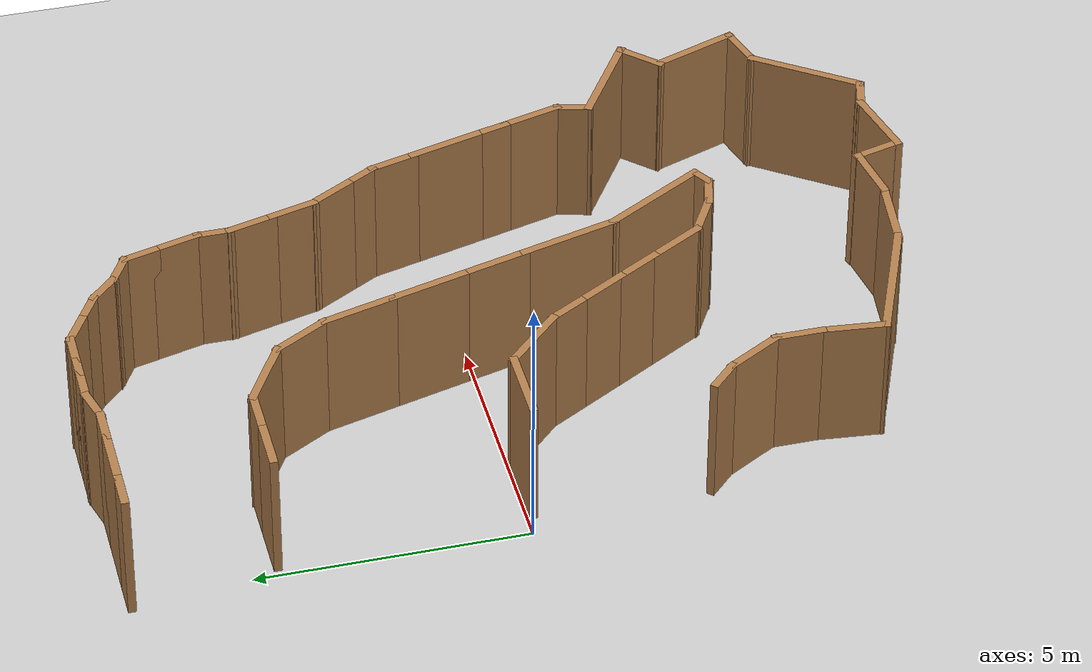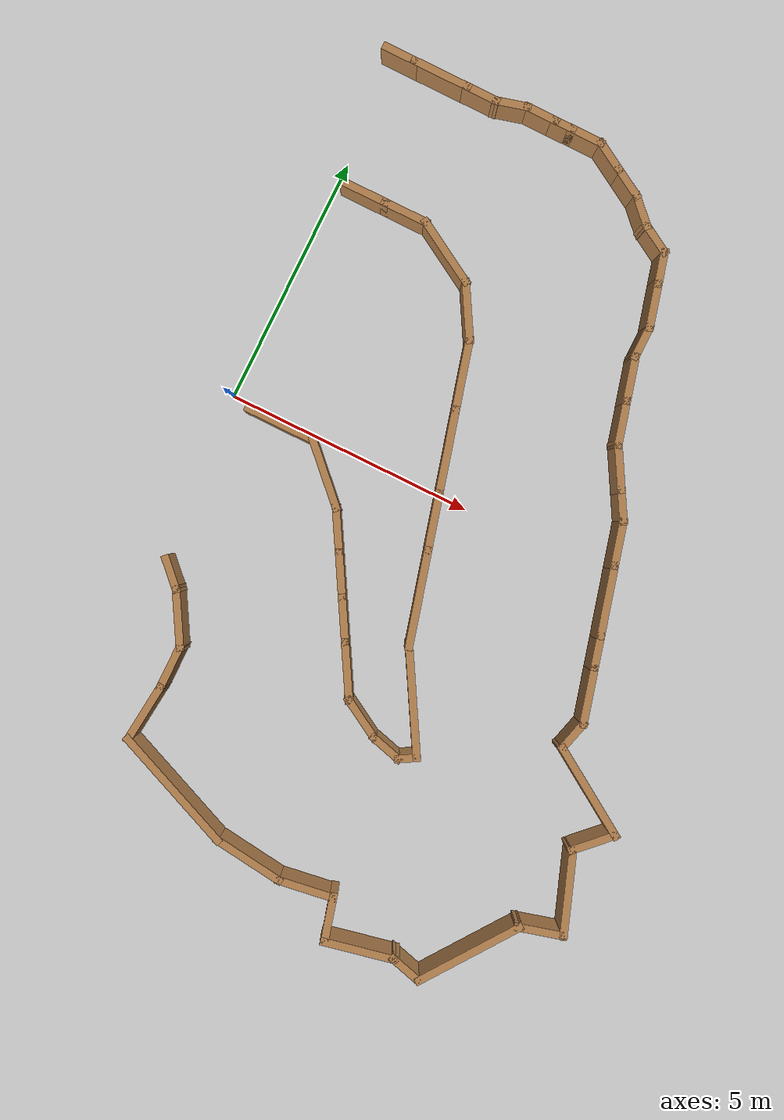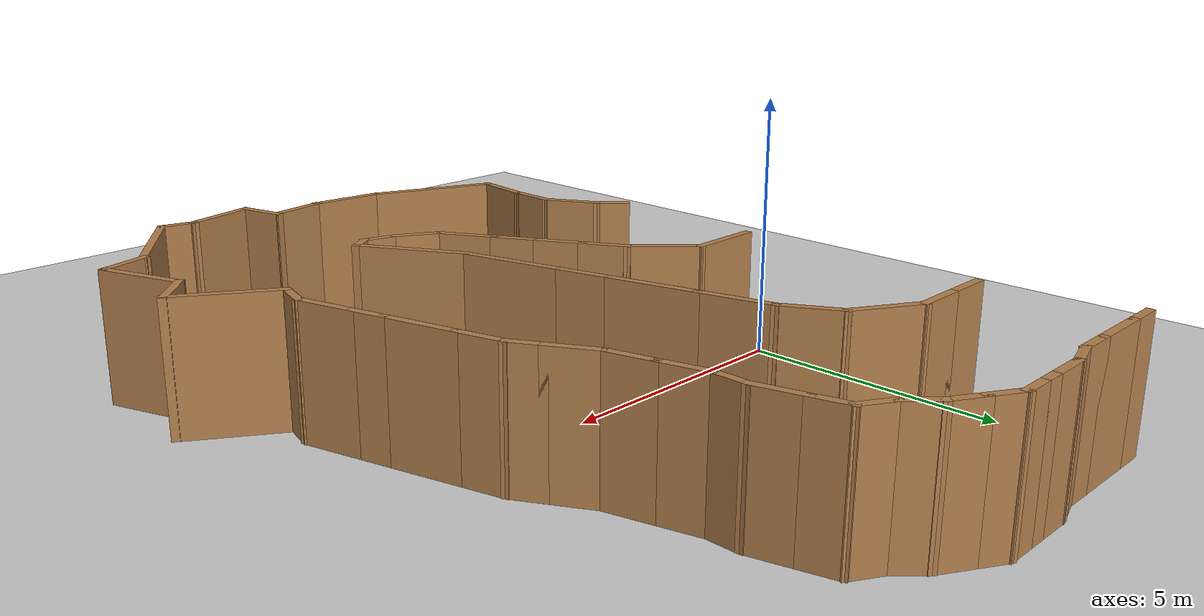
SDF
<sdf version="1.7">
 <world name="default">
  <model name="ground_plane">
   <static>1</static>
   <link name="link">
    <collision name="collision">
     <geometry><plane><normal>0 0 1</normal><size>100 100</size></plane></geometry>
     <surface><friction><ode><mu>100</mu><mu2>50</mu2></ode></friction></surface>
    </collision>
    <visual name="visual">
     <cast_shadows>0</cast_shadows>
     <geometry><plane><normal>0 0 1</normal><size>100 100</size></plane></geometry>
     <material>
      <script><uri>file://media/materials/scripts/gazebo.material</uri><name>Gazebo/Grey</name></script>
     </material>
    </visual>
   </link>
  </model>
  <model name="m-shape-circle">
   <pose>0.902463 -0.279625 0 0 -0 0</pose>
   <link name="Wall_100">
    <collision name="Wall_100_Collision">
     <geometry><box><size>1 0.15 2.5</size></box></geometry>
     <pose>0 0 1.25 0 -0 0</pose>
    </collision>
    <visual name="Wall_100_Visual">
     <pose>0 0 1.25 0 -0 0</pose>
     <geometry><box><size>1 0.15 2.5</size></box></geometry>
     <material>
      <script><uri>file://media/materials/scripts/gazebo.material</uri><name>Gazebo/Wood</name></script>
      <ambient>1 1 1 1</ambient>
     </material>
     <meta><layer>0</layer></meta>
    </visual>
    <pose>0.581193 4.79872 0 0 -0 0</pose>
   </link>
   <link name="Wall_101">
    <collision name="Wall_101_Collision">
     <geometry><box><size>1.5 0.15 2.5</size></box></geometry>
     <pose>0 0 1.25 0 -0 0</pose>
    </collision>
    <visual name="Wall_101_Visual">
     <pose>0 0 1.25 0 -0 0</pose>
     <geometry><box><size>1.5 0.15 2.5</size></box></geometry>
     <material>
      <script><uri>file://media/materials/scripts/gazebo.material</uri><name>Gazebo/Wood</name></script>
      <ambient>1 1 1 1</ambient>
     </material>
     <meta><layer>0</layer></meta>
    </visual>
    <pose>1.59076 4.46122 0 0 -0 -0.523599</pose>
   </link>
   <link name="Wall_102">
    <collision name="Wall_102_Collision">
     <geometry><box><size>1.25 0.15 2.5</size></box></geometry>
     <pose>0 0 1.25 0 -0 0</pose>
    </collision>
    <visual name="Wall_102_Visual">
     <pose>0 0 1.25 0 -0 0</pose>
     <geometry><box><size>1.25 0.15 2.5</size></box></geometry>
     <material>
      <script><uri>file://media/materials/scripts/gazebo.material</uri><name>Gazebo/Wood</name></script>
      <ambient>1 1 1 1</ambient>
     </material>
     <meta><layer>0</layer></meta>
    </visual>
    <pose>2.45033 3.6474 0 0 -0 -1.0472</pose>
   </link>
   <link name="Wall_103">
    <collision name="Wall_103_Collision">
     <geometry><box><size>1.5 0.15 2.5</size></box></geometry>
     <pose>0 0 1.25 0 -0 0</pose>
    </collision>
    <visual name="Wall_103_Visual">
     <pose>0 0 1.25 0 -0 0</pose>
     <geometry><box><size>1.5 0.15 2.5</size></box></geometry>
     <material>
      <script><uri>file://media/materials/scripts/gazebo.material</uri><name>Gazebo/Wood</name></script>
      <ambient>1 1 1 1</ambient>
     </material>
     <meta><layer>0</layer></meta>
    </visual>
    <pose>2.90003 2.51909 0 0 -0 -1.309</pose>
   </link>
   <link name="Wall_104">
    <collision name="Wall_104_Collision">
     <geometry><box><size>1.75 0.15 2.5</size></box></geometry>
     <pose>0 0 1.25 0 -0 0</pose>
    </collision>
    <visual name="Wall_104_Visual">
     <pose>0 0 1.25 0 -0 0</pose>
     <geometry><box><size>1.75 0.15 2.5</size></box></geometry>
     <material>
      <script><uri>file://media/materials/scripts/gazebo.material</uri><name>Gazebo/Wood</name></script>
      <ambient>1 1 1 1</ambient>
     </material>
     <meta><layer>0</layer></meta>
    </visual>
    <pose>3.28179 1.09435 0 0 -0 -1.309</pose>
   </link>
   <link name="Wall_105">
    <collision name="Wall_105_Collision">
     <geometry><box><size>1.25 0.15 2.5</size></box></geometry>
     <pose>0 0 1.25 0 -0 0</pose>
    </collision>
    <visual name="Wall_105_Visual">
     <pose>0 0 1.25 0 -0 0</pose>
     <geometry><box><size>1.25 0.15 2.5</size></box></geometry>
     <material>
      <script><uri>file://media/materials/scripts/gazebo.material</uri><name>Gazebo/Wood</name></script>
      <ambient>1 1 1 1</ambient>
     </material>
     <meta><layer>0</layer></meta>
    </visual>
    <pose>3.63119 -0.209651 0 0 -0 -1.309</pose>
   </link>
   <link name="Wall_106">
    <collision name="Wall_106_Collision">
     <geometry><box><size>2 0.15 2.5</size></box></geometry>
     <pose>0 0 1.25 0 -0 0</pose>
    </collision>
    <visual name="Wall_106_Visual">
     <pose>0 0 1.25 0 -0 0</pose>
     <geometry><box><size>2 0.15 2.5</size></box></geometry>
     <material>
      <script><uri>file://media/materials/scripts/gazebo.material</uri><name>Gazebo/Wood</name></script>
      <ambient>1 1 1 1</ambient>
     </material>
     <meta><layer>0</layer></meta>
    </visual>
    <pose>4.01295 -1.63439 0 0 -0 -1.309</pose>
   </link>
   <link name="Wall_107">
    <collision name="Wall_107_Collision">
     <geometry><box><size>2.25 0.15 2.5</size></box></geometry>
     <pose>0 0 1.25 0 -0 0</pose>
    </collision>
    <visual name="Wall_107_Visual">
     <pose>0 0 1.25 0 -0 0</pose>
     <geometry><box><size>2.25 0.15 2.5</size></box></geometry>
     <material>
      <script><uri>file://media/materials/scripts/gazebo.material</uri><name>Gazebo/Wood</name></script>
      <ambient>1 1 1 1</ambient>
     </material>
     <meta><layer>0</layer></meta>
    </visual>
    <pose>4.77736 -3.4372 0 0 -0 -1.0472</pose>
   </link>
   <link name="Wall_108">
    <collision name="Wall_108_Collision">
     <geometry><box><size>0.5 0.15 2.5</size></box></geometry>
     <pose>0 0 1.25 0 -0 0</pose>
    </collision>
    <visual name="Wall_108_Visual">
     <pose>0 0 1.25 0 -0 0</pose>
     <geometry><box><size>0.5 0.15 2.5</size></box></geometry>
     <material>
      <script><uri>file://media/materials/scripts/gazebo.material</uri><name>Gazebo/Wood</name></script>
      <ambient>1 1 1 1</ambient>
     </material>
     <meta><layer>0</layer></meta>
    </visual>
    <pose>5.15081 -4.43403 0 0 -0 -2.61799</pose>
   </link>
   <link name="Wall_109">
    <collision name="Wall_109_Collision">
     <geometry><box><size>0.75 0.15 2.5</size></box></geometry>
     <pose>0 0 1.25 0 -0 0</pose>
    </collision>
    <visual name="Wall_109_Visual">
     <pose>0 0 1.25 0 -0 0</pose>
     <geometry><box><size>0.75 0.15 2.5</size></box></geometry>
     <material>
      <script><uri>file://media/materials/scripts/gazebo.material</uri><name>Gazebo/Wood</name></script>
      <ambient>1 1 1 1</ambient>
     </material>
     <meta><layer>0</layer></meta>
    </visual>
    <pose>4.70947 -4.44388 0 0 -0 2.87979</pose>
   </link>
   <link name="Wall_110">
    <collision name="Wall_110_Collision">
     <geometry><box><size>1 0.15 2.5</size></box></geometry>
     <pose>0 0 1.25 0 -0 0</pose>
    </collision>
    <visual name="Wall_110_Visual">
     <pose>0 0 1.25 0 -0 0</pose>
     <geometry><box><size>1 0.15 2.5</size></box></geometry>
     <material>
      <script><uri>file://media/materials/scripts/gazebo.material</uri><name>Gazebo/Wood</name></script>
      <ambient>1 1 1 1</ambient>
     </material>
     <meta><layer>0</layer></meta>
    </visual>
    <pose>4.05163 -4.15374 0 0 -0 2.61799</pose>
   </link>
   <link name="Wall_111">
    <collision name="Wall_111_Collision">
     <geometry><box><size>1.25 0.15 2.5</size></box></geometry>
     <pose>0 0 1.25 0 -0 0</pose>
    </collision>
    <visual name="Wall_111_Visual">
     <pose>0 0 1.25 0 -0 0</pose>
     <geometry><box><size>1.25 0.15 2.5</size></box></geometry>
     <material>
      <script><uri>file://media/materials/scripts/gazebo.material</uri><name>Gazebo/Wood</name></script>
      <ambient>1 1 1 1</ambient>
     </material>
     <meta><layer>0</layer></meta>
    </visual>
    <pose>3.40857 -3.46492 0 0 -0 2.0944</pose>
   </link>
   <link name="Wall_112">
    <collision name="Wall_112_Collision">
     <geometry><box><size>1 0.15 2.5</size></box></geometry>
     <pose>0 0 1.25 0 -0 0</pose>
    </collision>
    <visual name="Wall_112_Visual">
     <pose>0 0 1.25 0 -0 0</pose>
     <geometry><box><size>1 0.15 2.5</size></box></geometry>
     <material>
      <script><uri>file://media/materials/scripts/gazebo.material</uri><name>Gazebo/Wood</name></script>
      <ambient>1 1 1 1</ambient>
     </material>
     <meta><layer>0</layer></meta>
    </visual>
    <pose>2.92107 -2.62055 0 0 -0 2.0944</pose>
   </link>
   <link name="Wall_113">
    <collision name="Wall_113_Collision">
     <geometry><box><size>1 0.15 2.5</size></box></geometry>
     <pose>0 0 1.25 0 -0 0</pose>
    </collision>
    <visual name="Wall_113_Visual">
     <pose>0 0 1.25 0 -0 0</pose>
     <geometry><box><size>1 0.15 2.5</size></box></geometry>
     <material>
      <script><uri>file://media/materials/scripts/gazebo.material</uri><name>Gazebo/Wood</name></script>
      <ambient>1 1 1 1</ambient>
     </material>
     <meta><layer>0</layer></meta>
    </visual>
    <pose>2.49607 -1.88443 0 0 -0 2.0944</pose>
   </link>
   <link name="Wall_114">
    <collision name="Wall_114_Collision">
     <geometry><box><size>1 0.15 2.5</size></box></geometry>
     <pose>0 0 1.25 0 -0 0</pose>
    </collision>
    <visual name="Wall_114_Visual">
     <pose>0 0 1.25 0 -0 0</pose>
     <geometry><box><size>1 0.15 2.5</size></box></geometry>
     <material>
      <script><uri>file://media/materials/scripts/gazebo.material</uri><name>Gazebo/Wood</name></script>
      <ambient>1 1 1 1</ambient>
     </material>
     <meta><layer>0</layer></meta>
    </visual>
    <pose>2.07107 -1.1483 0 0 -0 2.0944</pose>
   </link>
   <link name="Wall_115">
    <collision name="Wall_115_Collision">
     <geometry><box><size>1.5 0.15 2.5</size></box></geometry>
     <pose>0 0 1.25 0 -0 0</pose>
    </collision>
    <visual name="Wall_115_Visual">
     <pose>0 0 1.25 0 -0 0</pose>
     <geometry><box><size>1.5 0.15 2.5</size></box></geometry>
     <material>
      <script><uri>file://media/materials/scripts/gazebo.material</uri><name>Gazebo/Wood</name></script>
      <ambient>1 1 1 1</ambient>
     </material>
     <meta><layer>0</layer></meta>
    </visual>
    <pose>1.38128 -0.302945 0 0 -0 2.35619</pose>
   </link>
   <link name="Wall_116">
    <collision name="Wall_116_Collision">
     <geometry><box><size>1.5 0.15 2.5</size></box></geometry>
     <pose>0 0 1.25 0 -0 0</pose>
    </collision>
    <visual name="Wall_116_Visual">
     <pose>0 0 1.25 0 -0 0</pose>
     <geometry><box><size>1.5 0.15 2.5</size></box></geometry>
     <material>
      <script><uri>file://media/materials/scripts/gazebo.material</uri><name>Gazebo/Wood</name></script>
      <ambient>1 1 1 1</ambient>
     </material>
     <meta><layer>0</layer></meta>
    </visual>
    <pose>0.228979 0.174352 0 0 -0 3.14159</pose>
   </link>
   <link name="Wall_29">
    <collision name="Wall_29_Collision">
     <geometry><box><size>0.75 0.15 2.5</size></box></geometry>
     <pose>0 0 1.25 0 -0 0</pose>
    </collision>
    <visual name="Wall_29_Visual">
     <pose>0 0 1.25 0 -0 0</pose>
     <geometry><box><size>0.75 0.15 2.5</size></box></geometry>
     <material>
      <script><uri>file://media/materials/scripts/gazebo.material</uri><name>Gazebo/Wood</name></script>
      <ambient>1 1 1 1</ambient>
     </material>
     <meta><layer>0</layer></meta>
    </visual>
    <pose>-0.81552 7.44152 0 0 -0 0</pose>
   </link>
   <link name="Wall_30">
    <collision name="Wall_30_Collision">
     <geometry><box><size>1.25 0.15 2.5</size></box></geometry>
     <pose>0 0 1.25 0 -0 0</pose>
    </collision>
    <visual name="Wall_30_Visual">
     <pose>0 0 1.25 0 -0 0</pose>
     <geometry><box><size>1.25 0.15 2.5</size></box></geometry>
     <material>
      <script><uri>file://media/materials/scripts/gazebo.material</uri><name>Gazebo/Wood</name></script>
      <ambient>1 1 1 1</ambient>
     </material>
     <meta><layer>0</layer></meta>
    </visual>
    <pose>0.03448 7.44152 0 0 -0 0</pose>
   </link>
   <link name="Wall_31">
    <collision name="Wall_31_Collision">
     <geometry><box><size>0.75 0.15 2.5</size></box></geometry>
     <pose>0 0 1.25 0 -0 0</pose>
    </collision>
    <visual name="Wall_31_Visual">
     <pose>0 0 1.25 0 -0 0</pose>
     <geometry><box><size>0.75 0.15 2.5</size></box></geometry>
     <material>
      <script><uri>file://media/materials/scripts/gazebo.material</uri><name>Gazebo/Wood</name></script>
      <ambient>1 1 1 1</ambient>
     </material>
     <meta><layer>0</layer></meta>
    </visual>
    <pose>0.88448 7.44152 0 0 -0 0</pose>
   </link>
   <link name="Wall_32">
    <collision name="Wall_32_Collision">
     <geometry><box><size>0.75 0.15 2.5</size></box></geometry>
     <pose>0 0 1.25 0 -0 0</pose>
    </collision>
    <visual name="Wall_32_Visual">
     <pose>0 0 1.25 0 -0 0</pose>
     <geometry><box><size>0.75 0.15 2.5</size></box></geometry>
     <material>
      <script><uri>file://media/materials/scripts/gazebo.material</uri><name>Gazebo/Wood</name></script>
      <ambient>1 1 1 1</ambient>
     </material>
     <meta><layer>0</layer></meta>
    </visual>
    <pose>1.47426 7.51916 0 0 -0 0.261799</pose>
   </link>
   <link name="Wall_33">
    <collision name="Wall_33_Collision">
     <geometry><box><size>0.75 0.15 2.5</size></box></geometry>
     <pose>0 0 1.25 0 -0 0</pose>
    </collision>
    <visual name="Wall_33_Visual">
     <pose>0 0 1.25 0 -0 0</pose>
     <geometry><box><size>0.75 0.15 2.5</size></box></geometry>
     <material>
      <script><uri>file://media/materials/scripts/gazebo.material</uri><name>Gazebo/Wood</name></script>
      <ambient>1 1 1 1</ambient>
     </material>
     <meta><layer>0</layer></meta>
    </visual>
    <pose>2.06404 7.59681 0 0 -0 0</pose>
   </link>
   <link name="Wall_34">
    <collision name="Wall_34_Collision">
     <geometry><box><size>0.5 0.15 2.5</size></box></geometry>
     <pose>0 0 1.25 0 -0 0</pose>
    </collision>
    <visual name="Wall_34_Visual">
     <pose>0 0 1.25 0 -0 0</pose>
     <geometry><box><size>0.5 0.15 2.5</size></box></geometry>
     <material>
      <script><uri>file://media/materials/scripts/gazebo.material</uri><name>Gazebo/Wood</name></script>
      <ambient>1 1 1 1</ambient>
     </material>
     <meta><layer>0</layer></meta>
    </visual>
    <pose>2.53904 7.59681 0 0 -0 0</pose>
   </link>
   <link name="Wall_35">
    <collision name="Wall_35_Collision">
     <geometry><box><size>0.75 0.15 2.5</size></box></geometry>
     <pose>0 0 1.25 0 -0 0</pose>
    </collision>
    <visual name="Wall_35_Visual">
     <pose>0 0 1.25 0 -0 0</pose>
     <geometry><box><size>0.75 0.15 2.5</size></box></geometry>
     <material>
      <script><uri>file://media/materials/scripts/gazebo.material</uri><name>Gazebo/Wood</name></script>
      <ambient>1 1 1 1</ambient>
     </material>
     <meta><layer>0</layer></meta>
    </visual>
    <pose>3.01403 7.59681 0 0 -0 0</pose>
   </link>
   <link name="Wall_36">
    <collision name="Wall_36_Collision">
     <geometry><box><size>0.75 0.15 2.5</size></box></geometry>
     <pose>0 0 1.25 0 -0 0</pose>
    </collision>
    <visual name="Wall_36_Visual">
     <pose>0 0 1.25 0 -0 0</pose>
     <geometry><box><size>0.75 0.15 2.5</size></box></geometry>
     <material>
      <script><uri>file://media/materials/scripts/gazebo.material</uri><name>Gazebo/Wood</name></script>
      <ambient>1 1 1 1</ambient>
     </material>
     <meta><layer>0</layer></meta>
    </visual>
    <pose>3.57384 7.44681 0 0 -0 -0.523599</pose>
   </link>
   <link name="Wall_37">
    <collision name="Wall_37_Collision">
     <geometry><box><size>0.75 0.15 2.5</size></box></geometry>
     <pose>0 0 1.25 0 -0 0</pose>
    </collision>
    <visual name="Wall_37_Visual">
     <pose>0 0 1.25 0 -0 0</pose>
     <geometry><box><size>0.75 0.15 2.5</size></box></geometry>
     <material>
      <script><uri>file://media/materials/scripts/gazebo.material</uri><name>Gazebo/Wood</name></script>
      <ambient>1 1 1 1</ambient>
     </material>
     <meta><layer>0</layer></meta>
    </visual>
    <pose>4.09346 7.14681 0 0 -0 -0.523599</pose>
   </link>
   <link name="Wall_38">
    <collision name="Wall_38_Collision">
     <geometry><box><size>0.75 0.15 2.5</size></box></geometry>
     <pose>0 0 1.25 0 -0 0</pose>
    </collision>
    <visual name="Wall_38_Visual">
     <pose>0 0 1.25 0 -0 0</pose>
     <geometry><box><size>0.75 0.15 2.5</size></box></geometry>
     <material>
      <script><uri>file://media/materials/scripts/gazebo.material</uri><name>Gazebo/Wood</name></script>
      <ambient>1 1 1 1</ambient>
     </material>
     <meta><layer>0</layer></meta>
    </visual>
    <pose>4.5654 6.78468 0 0 -0 -0.785398</pose>
   </link>
   <link name="Wall_39">
    <collision name="Wall_39_Collision">
     <geometry><box><size>0.75 0.15 2.5</size></box></geometry>
     <pose>0 0 1.25 0 -0 0</pose>
    </collision>
    <visual name="Wall_39_Visual">
     <pose>0 0 1.25 0 -0 0</pose>
     <geometry><box><size>0.75 0.15 2.5</size></box></geometry>
     <material>
      <script><uri>file://media/materials/scripts/gazebo.material</uri><name>Gazebo/Wood</name></script>
      <ambient>1 1 1 1</ambient>
     </material>
     <meta><layer>0</layer></meta>
    </visual>
    <pose>5.03734 6.42255 0 0 -0 -0.523599</pose>
   </link>
   <link name="Wall_40">
    <collision name="Wall_40_Collision">
     <geometry><box><size>0.75 0.15 2.5</size></box></geometry>
     <pose>0 0 1.25 0 -0 0</pose>
    </collision>
    <visual name="Wall_40_Visual">
     <pose>0 0 1.25 0 -0 0</pose>
     <geometry><box><size>0.75 0.15 2.5</size></box></geometry>
     <material>
      <script><uri>file://media/materials/scripts/gazebo.material</uri><name>Gazebo/Wood</name></script>
      <ambient>1 1 1 1</ambient>
     </material>
     <meta><layer>0</layer></meta>
    </visual>
    <pose>5.37479 5.98277 0 0 -0 -1.309</pose>
   </link>
   <link name="Wall_41">
    <collision name="Wall_41_Collision">
     <geometry><box><size>1 0.15 2.5</size></box></geometry>
     <pose>0 0 1.25 0 -0 0</pose>
    </collision>
    <visual name="Wall_41_Visual">
     <pose>0 0 1.25 0 -0 0</pose>
     <geometry><box><size>1 0.15 2.5</size></box></geometry>
     <material>
      <script><uri>file://media/materials/scripts/gazebo.material</uri><name>Gazebo/Wood</name></script>
      <ambient>1 1 1 1</ambient>
     </material>
     <meta><layer>0</layer></meta>
    </visual>
    <pose>5.56243 5.28247 0 0 -0 -1.309</pose>
   </link>
   <link name="Wall_42">
    <collision name="Wall_42_Collision">
     <geometry><box><size>0.75 0.15 2.5</size></box></geometry>
     <pose>0 0 1.25 0 -0 0</pose>
    </collision>
    <visual name="Wall_42_Visual">
     <pose>0 0 1.25 0 -0 0</pose>
     <geometry><box><size>0.75 0.15 2.5</size></box></geometry>
     <material>
      <script><uri>file://media/materials/scripts/gazebo.material</uri><name>Gazebo/Wood</name></script>
      <ambient>1 1 1 1</ambient>
     </material>
     <meta><layer>0</layer></meta>
    </visual>
    <pose>5.67243 4.57195 0 0 -0 -1.5708</pose>
   </link>
   <link name="Wall_43">
    <collision name="Wall_43_Collision">
     <geometry><box><size>1 0.15 2.5</size></box></geometry>
     <pose>0 0 1.25 0 -0 0</pose>
    </collision>
    <visual name="Wall_43_Visual">
     <pose>0 0 1.25 0 -0 0</pose>
     <geometry><box><size>1 0.15 2.5</size></box></geometry>
     <material>
      <script><uri>file://media/materials/scripts/gazebo.material</uri><name>Gazebo/Wood</name></script>
      <ambient>1 1 1 1</ambient>
     </material>
     <meta><layer>0</layer></meta>
    </visual>
    <pose>5.78243 3.86144 0 0 -0 -1.309</pose>
   </link>
   <link name="Wall_44">
    <collision name="Wall_44_Collision">
     <geometry><box><size>1 0.15 2.5</size></box></geometry>
     <pose>0 0 1.25 0 -0 0</pose>
    </collision>
    <visual name="Wall_44_Visual">
     <pose>0 0 1.25 0 -0 0</pose>
     <geometry><box><size>1 0.15 2.5</size></box></geometry>
     <material>
      <script><uri>file://media/materials/scripts/gazebo.material</uri><name>Gazebo/Wood</name></script>
      <ambient>1 1 1 1</ambient>
     </material>
     <meta><layer>0</layer></meta>
    </visual>
    <pose>6.00243 3.0404 0 0 -0 -1.309</pose>
   </link>
   <link name="Wall_45">
    <collision name="Wall_45_Collision">
     <geometry><box><size>1 0.15 2.5</size></box></geometry>
     <pose>0 0 1.25 0 -0 0</pose>
    </collision>
    <visual name="Wall_45_Visual">
     <pose>0 0 1.25 0 -0 0</pose>
     <geometry><box><size>1 0.15 2.5</size></box></geometry>
     <material>
      <script><uri>file://media/materials/scripts/gazebo.material</uri><name>Gazebo/Wood</name></script>
      <ambient>1 1 1 1</ambient>
     </material>
     <meta><layer>0</layer></meta>
    </visual>
    <pose>6.32493 2.26182 0 0 -0 -1.0472</pose>
   </link>
   <link name="Wall_46">
    <collision name="Wall_46_Collision">
     <geometry><box><size>0.75 0.15 2.5</size></box></geometry>
     <pose>0 0 1.25 0 -0 0</pose>
    </collision>
    <visual name="Wall_46_Visual">
     <pose>0 0 1.25 0 -0 0</pose>
     <geometry><box><size>0.75 0.15 2.5</size></box></geometry>
     <material>
      <script><uri>file://media/materials/scripts/gazebo.material</uri><name>Gazebo/Wood</name></script>
      <ambient>1 1 1 1</ambient>
     </material>
     <meta><layer>0</layer></meta>
    </visual>
    <pose>6.68743 1.63395 0 0 -0 -1.0472</pose>
   </link>
   <link name="Wall_47">
    <collision name="Wall_47_Collision">
     <geometry><box><size>1 0.15 2.5</size></box></geometry>
     <pose>0 0 1.25 0 -0 0</pose>
    </collision>
    <visual name="Wall_47_Visual">
     <pose>0 0 1.25 0 -0 0</pose>
     <geometry><box><size>1 0.15 2.5</size></box></geometry>
     <material>
      <script><uri>file://media/materials/scripts/gazebo.material</uri><name>Gazebo/Wood</name></script>
      <ambient>1 1 1 1</ambient>
     </material>
     <meta><layer>0</layer></meta>
    </visual>
    <pose>6.94742 0.963624 0 0 -0 -1.309</pose>
   </link>
   <link name="Wall_48">
    <collision name="Wall_48_Collision">
     <geometry><box><size>1.5 0.15 2.5</size></box></geometry>
     <pose>0 0 1.25 0 -0 0</pose>
    </collision>
    <visual name="Wall_48_Visual">
     <pose>0 0 1.25 0 -0 0</pose>
     <geometry><box><size>1.5 0.15 2.5</size></box></geometry>
     <material>
      <script><uri>file://media/materials/scripts/gazebo.material</uri><name>Gazebo/Wood</name></script>
      <ambient>1 1 1 1</ambient>
     </material>
     <meta><layer>0</layer></meta>
    </visual>
    <pose>7.23212 -0.098895 0 0 -0 -1.309</pose>
   </link>
   <link name="Wall_49">
    <collision name="Wall_49_Collision">
     <geometry><box><size>0.75 0.15 2.5</size></box></geometry>
     <pose>0 0 1.25 0 -0 0</pose>
    </collision>
    <visual name="Wall_49_Visual">
     <pose>0 0 1.25 0 -0 0</pose>
     <geometry><box><size>0.75 0.15 2.5</size></box></geometry>
     <material>
      <script><uri>file://media/materials/scripts/gazebo.material</uri><name>Gazebo/Wood</name></script>
      <ambient>1 1 1 1</ambient>
     </material>
     <meta><layer>0</layer></meta>
    </visual>
    <pose>7.48447 -1.04067 0 0 -0 -1.309</pose>
   </link>
   <link name="Wall_50">
    <collision name="Wall_50_Collision">
     <geometry><box><size>1.25 0.15 2.5</size></box></geometry>
     <pose>0 0 1.25 0 -0 0</pose>
    </collision>
    <visual name="Wall_50_Visual">
     <pose>0 0 1.25 0 -0 0</pose>
     <geometry><box><size>1.25 0.15 2.5</size></box></geometry>
     <material>
      <script><uri>file://media/materials/scripts/gazebo.material</uri><name>Gazebo/Wood</name></script>
      <ambient>1 1 1 1</ambient>
     </material>
     <meta><layer>0</layer></meta>
    </visual>
    <pose>7.70447 -1.86171 0 0 -0 -1.309</pose>
   </link>
   <link name="Wall_51">
    <collision name="Wall_51_Collision">
     <geometry><box><size>0.75 0.15 2.5</size></box></geometry>
     <pose>0 0 1.25 0 -0 0</pose>
    </collision>
    <visual name="Wall_51_Visual">
     <pose>0 0 1.25 0 -0 0</pose>
     <geometry><box><size>0.75 0.15 2.5</size></box></geometry>
     <material>
      <script><uri>file://media/materials/scripts/gazebo.material</uri><name>Gazebo/Wood</name></script>
      <ambient>1 1 1 1</ambient>
     </material>
     <meta><layer>0</layer></meta>
    </visual>
    <pose>7.76917 -2.68275 0 0 -0 -1.8326</pose>
   </link>
   <link name="Wall_52">
    <collision name="Wall_52_Collision">
     <geometry><box><size>2.09057 0.15 2.5</size></box></geometry>
     <pose>0 0 1.25 0 -0 0</pose>
    </collision>
    <visual name="Wall_52_Visual">
     <pose>0 0 1.25 0 -0 0</pose>
     <geometry><box><size>2.09057 0.15 2.5</size></box></geometry>
     <material>
      <script><uri>file://media/materials/scripts/gazebo.material</uri><name>Gazebo/Wood</name></script>
      <ambient>1 1 1 1</ambient>
     </material>
     <meta><layer>0</layer></meta>
    </visual>
    <pose>8.50675 -3.4987 0 0 -0 -0.573156</pose>
   </link>
   <link name="Wall_53">
    <collision name="Wall_53_Collision">
     <geometry><box><size>1 0.15 2.5</size></box></geometry>
     <pose>0 0 1.25 0 -0 0</pose>
    </collision>
    <visual name="Wall_53_Visual">
     <pose>0 0 1.25 0 -0 0</pose>
     <geometry><box><size>1 0.15 2.5</size></box></geometry>
     <material>
      <script><uri>file://media/materials/scripts/gazebo.material</uri><name>Gazebo/Wood</name></script>
      <ambient>1 1 1 1</ambient>
     </material>
     <meta><layer>0</layer></meta>
    </visual>
    <pose>8.99833 -4.32539 0 0 -0 -2.35619</pose>
   </link>
   <link name="Wall_54">
    <collision name="Wall_54_Collision">
     <geometry><box><size>1.77338 0.15 2.5</size></box></geometry>
     <pose>0 0 1.25 0 -0 0</pose>
    </collision>
    <visual name="Wall_54_Visual">
     <pose>0 0 1.25 0 -0 0</pose>
     <geometry><box><size>1.77338 0.15 2.5</size></box></geometry>
     <material>
      <script><uri>file://media/materials/scripts/gazebo.material</uri><name>Gazebo/Wood</name></script>
      <ambient>1 1 1 1</ambient>
     </material>
     <meta><layer>0</layer></meta>
    </visual>
    <pose>8.99699 -5.38922 0 0 -0 -1.22379</pose>
   </link>
   <link name="Wall_55">
    <collision name="Wall_55_Collision">
     <geometry><box><size>1 0.15 2.5</size></box></geometry>
     <pose>0 0 1.25 0 -0 0</pose>
    </collision>
    <visual name="Wall_55_Visual">
     <pose>0 0 1.25 0 -0 0</pose>
     <geometry><box><size>1 0.15 2.5</size></box></geometry>
     <material>
      <script><uri>file://media/materials/scripts/gazebo.material</uri><name>Gazebo/Wood</name></script>
      <ambient>1 1 1 1</ambient>
     </material>
     <meta><layer>0</layer></meta>
    </visual>
    <pose>8.83939 -6.26253 0 0 -0 -2.87979</pose>
   </link>
   <link name="Wall_56">
    <collision name="Wall_56_Collision">
     <geometry><box><size>2.28951 0.15 2.5</size></box></geometry>
     <pose>0 0 1.25 0 -0 0</pose>
    </collision>
    <visual name="Wall_56_Visual">
     <pose>0 0 1.25 0 -0 0</pose>
     <geometry><box><size>2.28951 0.15 2.5</size></box></geometry>
     <material>
      <script><uri>file://media/materials/scripts/gazebo.material</uri><name>Gazebo/Wood</name></script>
      <ambient>1 1 1 1</ambient>
     </material>
     <meta><layer>0</layer></meta>
    </visual>
    <pose>7.82269 -7.23759 0 0 -0 -2.19972</pose>
   </link>
   <link name="Wall_57">
    <collision name="Wall_57_Collision">
     <geometry><box><size>0.75 0.15 2.5</size></box></geometry>
     <pose>0 0 1.25 0 -0 0</pose>
    </collision>
    <visual name="Wall_57_Visual">
     <pose>0 0 1.25 0 -0 0</pose>
     <geometry><box><size>0.75 0.15 2.5</size></box></geometry>
     <material>
      <script><uri>file://media/materials/scripts/gazebo.material</uri><name>Gazebo/Wood</name></script>
      <ambient>1 1 1 1</ambient>
     </material>
     <meta><layer>0</layer></meta>
    </visual>
    <pose>6.87302 -8.02502 0 0 -0 2.87979</pose>
   </link>
   <link name="Wall_58">
    <collision name="Wall_58_Collision">
     <geometry><box><size>1.52652 0.15 2.5</size></box></geometry>
     <pose>0 0 1.25 0 -0 0</pose>
    </collision>
    <visual name="Wall_58_Visual">
     <pose>0 0 1.25 0 -0 0</pose>
     <geometry><box><size>1.52652 0.15 2.5</size></box></geometry>
     <material>
      <script><uri>file://media/materials/scripts/gazebo.material</uri><name>Gazebo/Wood</name></script>
      <ambient>1 1 1 1</ambient>
     </material>
     <meta><layer>0</layer></meta>
    </visual>
    <pose>5.94063 -8.09059 0 0 -0 -2.93198</pose>
   </link>
   <link name="Wall_59">
    <collision name="Wall_59_Collision">
     <geometry><box><size>1 0.15 2.5</size></box></geometry>
     <pose>0 0 1.25 0 -0 0</pose>
    </collision>
    <visual name="Wall_59_Visual">
     <pose>0 0 1.25 0 -0 0</pose>
     <geometry><box><size>1 0.15 2.5</size></box></geometry>
     <material>
      <script><uri>file://media/materials/scripts/gazebo.material</uri><name>Gazebo/Wood</name></script>
      <ambient>1 1 1 1</ambient>
     </material>
     <meta><layer>0</layer></meta>
    </visual>
    <pose>5.15744 -7.80016 0 0 -0 1.8326</pose>
   </link>
   <link name="Wall_60">
    <collision name="Wall_60_Collision">
     <geometry><box><size>1.22345 0.15 2.5</size></box></geometry>
     <pose>0 0 1.25 0 -0 0</pose>
    </collision>
    <visual name="Wall_60_Visual">
     <pose>0 0 1.25 0 -0 0</pose>
     <geometry><box><size>1.22345 0.15 2.5</size></box></geometry>
     <material>
      <script><uri>file://media/materials/scripts/gazebo.material</uri><name>Gazebo/Wood</name></script>
      <ambient>1 1 1 1</ambient>
     </material>
     <meta><layer>0</layer></meta>
    </visual>
    <pose>4.51648 -7.4912 0 0 -0 -2.99494</pose>
   </link>
   <link name="Wall_63">
    <collision name="Wall_63_Collision">
     <geometry><box><size>2.69847 0.15 2.5</size></box></geometry>
     <pose>0 0 1.25 0 -0 0</pose>
    </collision>
    <visual name="Wall_63_Visual">
     <pose>0 0 1.25 0 -0 0</pose>
     <geometry><box><size>2.69847 0.15 2.5</size></box></geometry>
     <material>
      <script><uri>file://media/materials/scripts/gazebo.material</uri><name>Gazebo/Wood</name></script>
      <ambient>1 1 1 1</ambient>
     </material>
     <meta><layer>0</layer></meta>
    </visual>
    <pose>1.43951 -6.91603 0 0 -0 2.7519</pose>
   </link>
   <link name="Wall_87">
    <collision name="Wall_87_Collision">
     <geometry><box><size>0.75 0.15 2.5</size></box></geometry>
     <pose>0 0 1.25 0 -0 0</pose>
    </collision>
    <visual name="Wall_87_Visual">
     <pose>0 0 1.25 0 -0 0</pose>
     <geometry><box><size>0.75 0.15 2.5</size></box></geometry>
     <material>
      <script><uri>file://media/materials/scripts/gazebo.material</uri><name>Gazebo/Wood</name></script>
      <ambient>1 1 1 1</ambient>
     </material>
     <meta><layer>0</layer></meta>
    </visual>
    <pose>-0.384555 -3.27665 0 0 -0 -0.785398</pose>
   </link>
   <link name="Wall_88">
    <collision name="Wall_88_Collision">
     <geometry><box><size>1.25 0.15 2.5</size></box></geometry>
     <pose>0 0 1.25 0 -0 0</pose>
    </collision>
    <visual name="Wall_88_Visual">
     <pose>0 0 1.25 0 -0 0</pose>
     <geometry><box><size>1.25 0.15 2.5</size></box></geometry>
     <material>
      <script><uri>file://media/materials/scripts/gazebo.material</uri><name>Gazebo/Wood</name></script>
      <ambient>1 1 1 1</ambient>
     </material>
     <meta><layer>0</layer></meta>
    </visual>
    <pose>0.102577 -3.96509 0 0 -0 -1.0472</pose>
   </link>
   <link name="Wall_89">
    <collision name="Wall_89_Collision">
     <geometry><box><size>1 0.15 2.5</size></box></geometry>
     <pose>0 0 1.25 0 -0 0</pose>
    </collision>
    <visual name="Wall_89_Visual">
     <pose>0 0 1.25 0 -0 0</pose>
     <geometry><box><size>1 0.15 2.5</size></box></geometry>
     <material>
      <script><uri>file://media/materials/scripts/gazebo.material</uri><name>Gazebo/Wood</name></script>
      <ambient>1 1 1 1</ambient>
     </material>
     <meta><layer>0</layer></meta>
    </visual>
    <pose>0.377577 -4.86641 0 0 -0 -1.5708</pose>
   </link>
   <link name="Wall_90">
    <collision name="Wall_90_Collision">
     <geometry><box><size>1.2965 0.15 2.5</size></box></geometry>
     <pose>0 0 1.25 0 -0 0</pose>
    </collision>
    <visual name="Wall_90_Visual">
     <pose>0 0 1.25 0 -0 0</pose>
     <geometry><box><size>1.2965 0.15 2.5</size></box></geometry>
     <material>
      <script><uri>file://media/materials/scripts/gazebo.material</uri><name>Gazebo/Wood</name></script>
      <ambient>1 1 1 1</ambient>
     </material>
     <meta><layer>0</layer></meta>
    </visual>
    <pose>0.319195 -5.86167 0 0 -0 -1.67282</pose>
   </link>
   <link name="Wall_92">
    <collision name="Wall_92_Collision">
     <geometry><box><size>1.52777 0.15 2.5</size></box></geometry>
     <pose>0 0 1.25 0 -0 0</pose>
    </collision>
    <visual name="Wall_92_Visual">
     <pose>0 0 1.25 0 -0 0</pose>
     <geometry><box><size>1.52777 0.15 2.5</size></box></geometry>
     <material>
      <script><uri>file://media/materials/scripts/gazebo.material</uri><name>Gazebo/Wood</name></script>
      <ambient>1 1 1 1</ambient>
     </material>
     <meta><layer>0</layer></meta>
    </visual>
    <pose>3.30187 -7.48487 0 0 -0 -0.123349</pose>
   </link>
   <link name="Wall_99">
    <collision name="Wall_99_Collision">
     <geometry><box><size>1 0.15 2.5</size></box></geometry>
     <pose>0 0 1.25 0 -0 0</pose>
    </collision>
    <visual name="Wall_99_Visual">
     <pose>0 0 1.25 0 -0 0</pose>
     <geometry><box><size>1 0.15 2.5</size></box></geometry>
     <material>
      <script><uri>file://media/materials/scripts/gazebo.material</uri><name>Gazebo/Wood</name></script>
      <ambient>1 1 1 1</ambient>
     </material>
     <meta><layer>0</layer></meta>
    </visual>
    <pose>-0.268807 4.79872 0 0 -0 0</pose>
   </link>
   <static>1</static>
  </model>
 </world>
</sdf>
